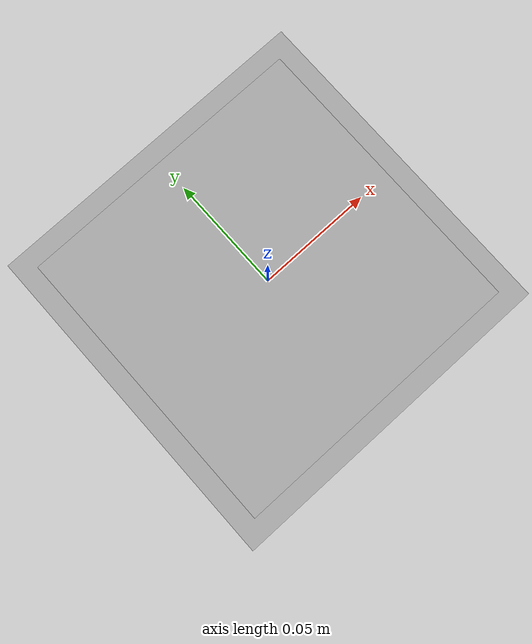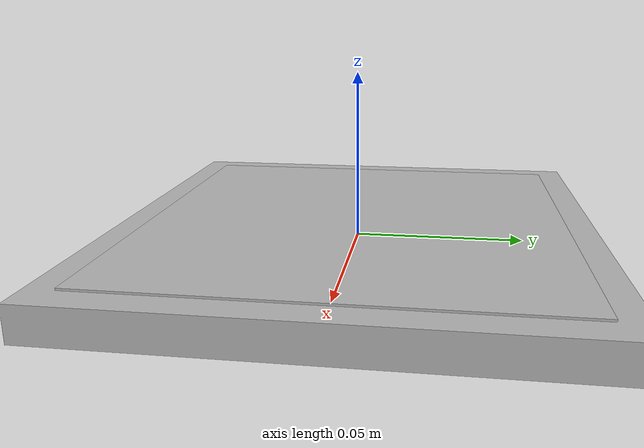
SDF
<sdf version='1.7'>
  <model name='my_aruco'>
    <link name='DICT_4X4_50_id2_link_0'>
      <inertial>
        <pose>0 0 0 0 -0 0</pose>
        <mass>1</mass>
        <inertia>
          <ixx>0.0741667</ixx>
          <ixy>0</ixy>
          <ixz>0</ixz>
          <iyy>0.0585417</iyy>
          <iyz>0</iyz>
          <izz>0.0260417</izz>
        </inertia>
      </inertial>
      <visual name='DICT_4X4_50_id2_link_0_visual'>
        <pose>0 0 0 0 -0 0</pose>
        <geometry>
          <box>
            <size>0.60 0.225 0.01</size>
          </box>
        </geometry>
      </visual>
      <visual name='DICT_4X4_50_id2_link_0_visual_1'>
        <pose>0 0 0 0 -0 0</pose>
        <geometry>
          <mesh>
            <scale>1.3889 1.3889 1.05556</scale>
            <uri>model://aruco_id3_12_5/meshes/DICT_4X4_50/DICT_4X4_50_id3.dae</uri>
          </mesh>
        </geometry>
      </visual>
      <gravity>0</gravity>
    </link>
  </model>
</sdf>
